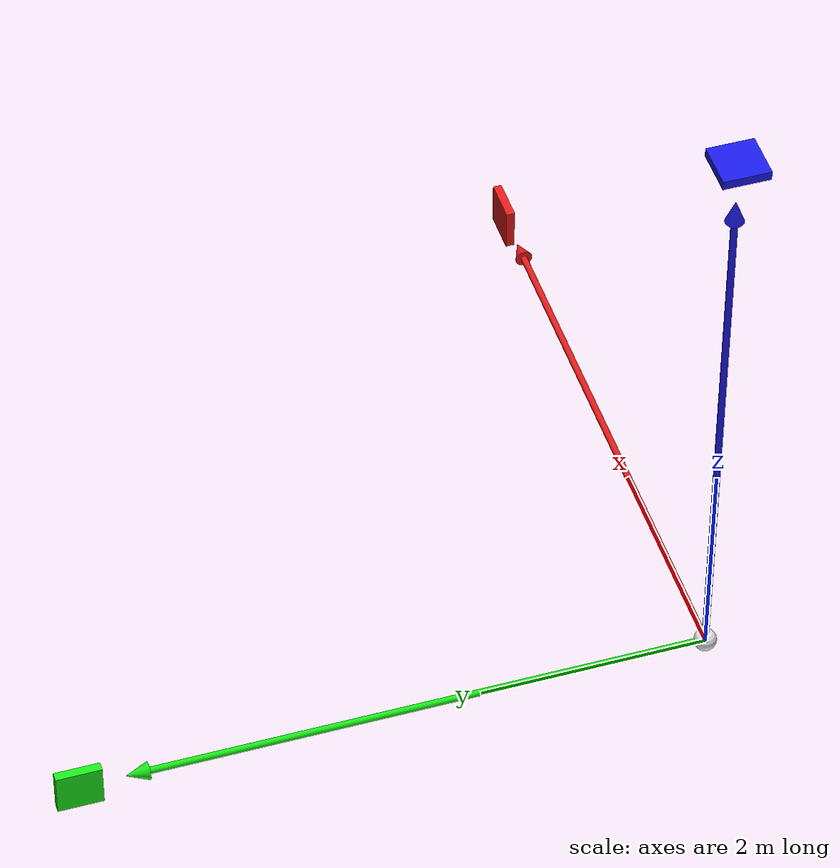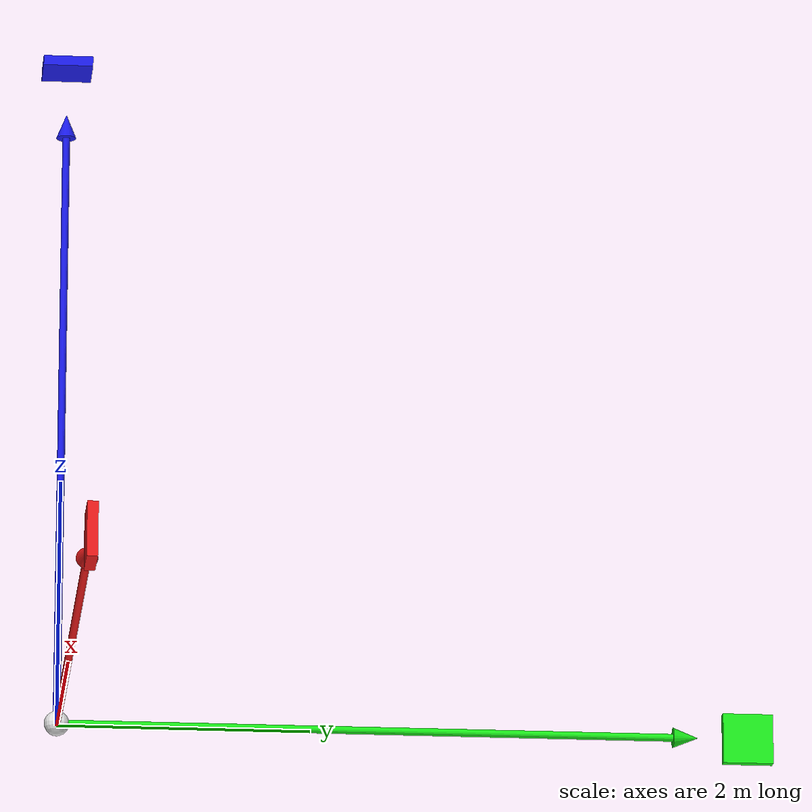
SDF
<?xml version="1.0"?>
<sdf version="1.6">
  <!--
    Coordinate Axes for Formation Control Arena
    X=Red, Y=Green, Z=Blue (RGB convention)
    5m long arrows with labels
  -->
  <model name="coordinate_axes">
    <static>true</static>

    <link name="axes_link">
      <!-- X Axis (Red) -->
      <visual name="x_axis_shaft">
        <pose>2.5 0 0.02 0 1.5708 0</pose>
        <geometry>
          <cylinder>
            <radius>0.03</radius>
            <length>5.0</length>
          </cylinder>
        </geometry>
        <material>
          <ambient>0.9 0.1 0.1 1</ambient>
          <diffuse>0.9 0.1 0.1 1</diffuse>
        </material>
      </visual>
      <visual name="x_axis_tip">
        <pose>5.0 0 0.02 0 1.5708 0</pose>
        <geometry>
          <cone>
            <radius>0.08</radius>
            <length>0.2</length>
          </cone>
        </geometry>
        <material>
          <ambient>0.9 0.1 0.1 1</ambient>
          <diffuse>0.9 0.1 0.1 1</diffuse>
        </material>
      </visual>
      <visual name="x_label">
        <pose>5.5 0 0.02 0 0 0</pose>
        <geometry>
          <box><size>0.4 0.08 0.4</size></box>
        </geometry>
        <material>
          <ambient>0.9 0.1 0.1 1</ambient>
          <diffuse>0.9 0.1 0.1 1</diffuse>
        </material>
      </visual>

      <!-- Y Axis (Green) -->
      <visual name="y_axis_shaft">
        <pose>0 2.5 0.02 1.5708 0 0</pose>
        <geometry>
          <cylinder>
            <radius>0.03</radius>
            <length>5.0</length>
          </cylinder>
        </geometry>
        <material>
          <ambient>0.1 0.9 0.1 1</ambient>
          <diffuse>0.1 0.9 0.1 1</diffuse>
        </material>
      </visual>
      <visual name="y_axis_tip">
        <pose>0 5.0 0.02 -1.5708 0 0</pose>
        <geometry>
          <cone>
            <radius>0.08</radius>
            <length>0.2</length>
          </cone>
        </geometry>
        <material>
          <ambient>0.1 0.9 0.1 1</ambient>
          <diffuse>0.1 0.9 0.1 1</diffuse>
        </material>
      </visual>
      <visual name="y_label">
        <pose>0 5.5 0.02 0 0 0</pose>
        <geometry>
          <box><size>0.08 0.4 0.4</size></box>
        </geometry>
        <material>
          <ambient>0.1 0.9 0.1 1</ambient>
          <diffuse>0.1 0.9 0.1 1</diffuse>
        </material>
      </visual>

      <!-- Z Axis (Blue) -->
      <visual name="z_axis_shaft">
        <pose>0 0 2.5 0 0 0</pose>
        <geometry>
          <cylinder>
            <radius>0.03</radius>
            <length>5.0</length>
          </cylinder>
        </geometry>
        <material>
          <ambient>0.1 0.1 0.9 1</ambient>
          <diffuse>0.1 0.1 0.9 1</diffuse>
        </material>
      </visual>
      <visual name="z_axis_tip">
        <pose>0 0 5.0 0 0 0</pose>
        <geometry>
          <cone>
            <radius>0.08</radius>
            <length>0.2</length>
          </cone>
        </geometry>
        <material>
          <ambient>0.1 0.1 0.9 1</ambient>
          <diffuse>0.1 0.1 0.9 1</diffuse>
        </material>
      </visual>
      <visual name="z_label">
        <pose>0 0 5.5 0 0 0</pose>
        <geometry>
          <box><size>0.4 0.4 0.08</size></box>
        </geometry>
        <material>
          <ambient>0.1 0.1 0.9 1</ambient>
          <diffuse>0.1 0.1 0.9 1</diffuse>
        </material>
      </visual>

      <!-- Origin sphere -->
      <visual name="origin">
        <pose>0 0 0.02 0 0 0</pose>
        <geometry>
          <sphere><radius>0.1</radius></sphere>
        </geometry>
        <material>
          <ambient>0.9 0.9 0.9 1</ambient>
          <diffuse>0.9 0.9 0.9 1</diffuse>
        </material>
      </visual>
    </link>

  </model>
</sdf>
